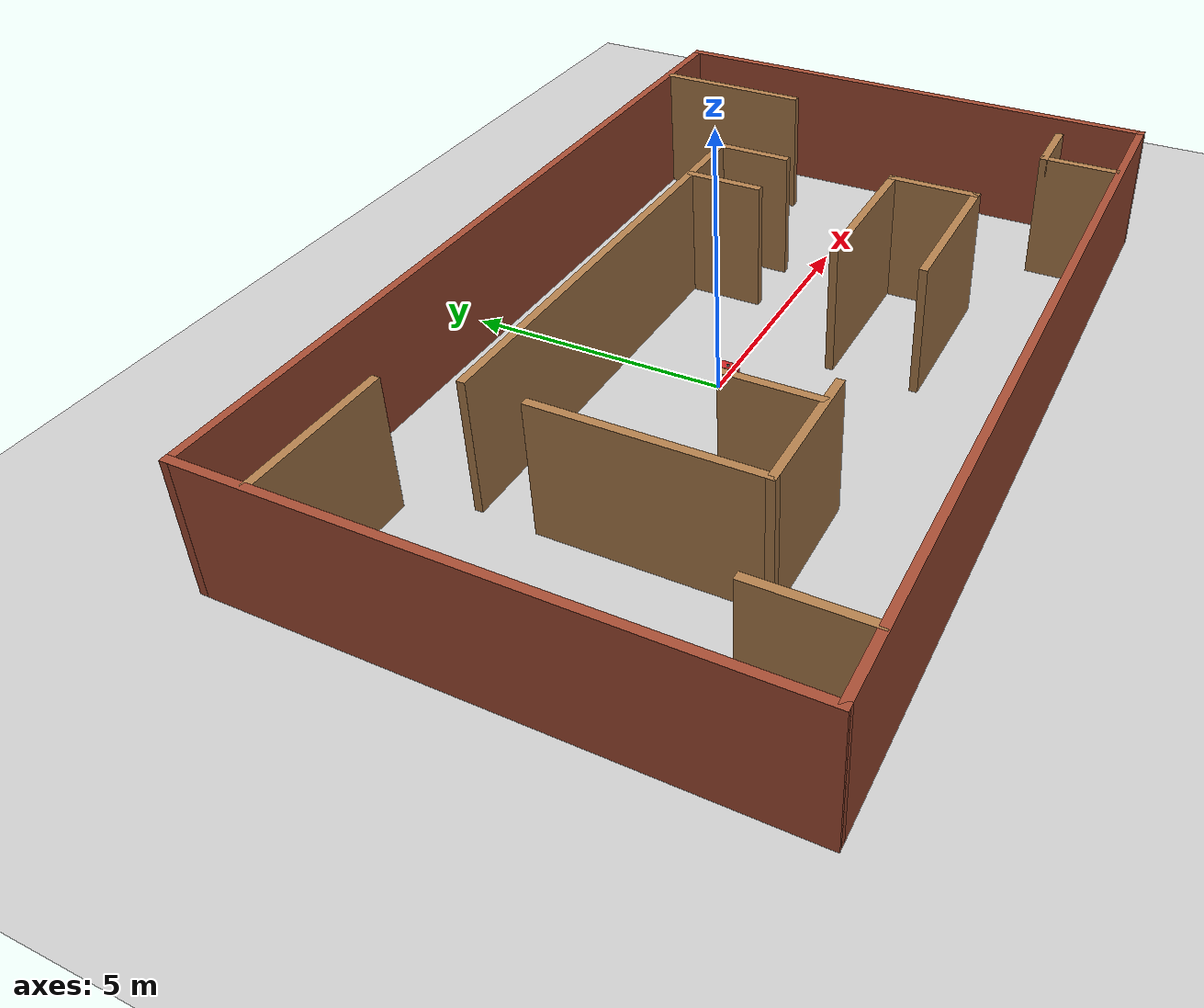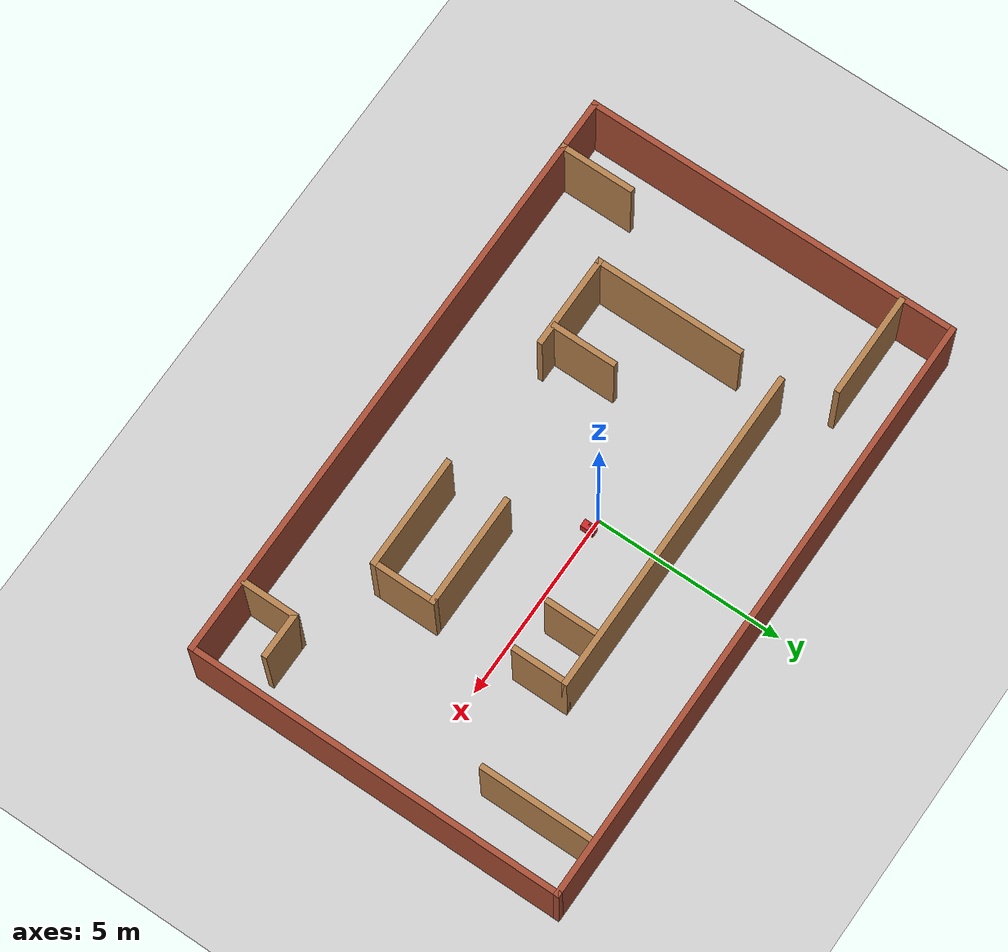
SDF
<sdf version="1.6">
 <world name="default">
  <light name="sun" type="directional">
   <pose>0 0 10 0 -0 0</pose>
   <diffuse>0.8 0.8 0.8 1</diffuse>
   <specular>0.1 0.1 0.1 1</specular>
   <attenuation>
    <range>1000</range>
    <constant>0.9</constant>
    <linear>0.01</linear>
    <quadratic>0.001</quadratic>
   </attenuation>
   <direction>-0.5 0.5 -1</direction>
  </light>
  <model name="ground_plane">
   <static>1</static>
   <link name="link">
    <collision name="collision">
     <geometry><plane><normal>0 0 1</normal><size>100 100</size></plane></geometry>
     <surface><friction><ode><mu>100</mu><mu2>50</mu2></ode></friction></surface>
    </collision>
    <visual name="visual">
     <cast_shadows>0</cast_shadows>
     <geometry><plane><normal>0 0 1</normal><size>100 100</size></plane></geometry>
     <material>
      <script><uri>file://media/materials/scripts/gazebo.material</uri><name>Gazebo/Grey</name></script>
     </material>
    </visual>
   </link>
  </model>
  <gravity>0 0 -9.8</gravity>
  <magnetic_field>6e-06 2.3e-05 -4.2e-05</magnetic_field>
  <atmosphere type="adiabatic"/>
  <physics name="default_physics" default="0" type="ode">
   <max_step_size>0.001</max_step_size>
   <real_time_factor>1</real_time_factor>
   <real_time_update_rate>1000</real_time_update_rate>
  </physics>
  <scene><ambient>0.4 0.4 0.4 1</ambient><background>0.7 0.7 0.7 1</background><shadows>1</shadows></scene>
  <spherical_coordinates>
   <surface_model>EARTH_WGS84</surface_model>
   <latitude_deg>0</latitude_deg>
   <longitude_deg>0</longitude_deg>
   <elevation>0</elevation>
   <heading_deg>0</heading_deg>
  </spherical_coordinates>
  <model name="sim_world">
   <pose>0.267794 -0.41395 0 0 -0 0</pose>
   <link name="Wall_10">
    <collision name="Wall_10_Collision">
     <geometry><box><size>8.75 0.15 2.5</size></box></geometry>
     <pose>0 0 1.25 0 -0 0</pose>
    </collision>
    <visual name="Wall_10_Visual">
     <pose>0 0 1.25 0 -0 0</pose>
     <geometry><box><size>8.75 0.15 2.5</size></box></geometry>
     <material>
      <script><uri>file://media/materials/scripts/gazebo.material</uri><name>Gazebo/Wood</name></script>
      <ambient>1 1 1 1</ambient>
     </material>
    </visual>
    <pose>-0.406828 2.37058 0 0 -0 0</pose>
   </link>
   <link name="Wall_11">
    <collision name="Wall_11_Collision">
     <geometry><box><size>1.5 0.15 2.5</size></box></geometry>
     <pose>0 0 1.25 0 -0 0</pose>
    </collision>
    <visual name="Wall_11_Visual">
     <pose>0 0 1.25 0 -0 0</pose>
     <geometry><box><size>1.5 0.15 2.5</size></box></geometry>
     <material>
      <script><uri>file://media/materials/scripts/gazebo.material</uri><name>Gazebo/Wood</name></script>
      <ambient>1 1 1 1</ambient>
     </material>
    </visual>
    <pose>3.89317 1.69558 0 0 0 -1.5708</pose>
   </link>
   <link name="Wall_13">
    <collision name="Wall_13_Collision">
     <geometry><box><size>1.75 0.15 2.5</size></box></geometry>
     <pose>0 0 1.25 0 -0 0</pose>
    </collision>
    <visual name="Wall_13_Visual">
     <pose>0 0 1.25 0 -0 0</pose>
     <geometry><box><size>1.75 0.15 2.5</size></box></geometry>
     <material>
      <script><uri>file://media/materials/scripts/gazebo.material</uri><name>Gazebo/Wood</name></script>
      <ambient>1 1 1 1</ambient>
     </material>
    </visual>
    <pose>4.02246 -1.92918 0 0 0 -1.5708</pose>
   </link>
   <link name="Wall_14">
    <collision name="Wall_14_Collision">
     <geometry><box><size>3 0.15 2.5</size></box></geometry>
     <pose>0 0 1.25 0 -0 0</pose>
    </collision>
    <visual name="Wall_14_Visual">
     <pose>0 0 1.25 0 -0 0</pose>
     <geometry><box><size>3 0.15 2.5</size></box></geometry>
     <material>
      <script><uri>file://media/materials/scripts/gazebo.material</uri><name>Gazebo/Wood</name></script>
      <ambient>1 1 1 1</ambient>
     </material>
    </visual>
    <pose>2.59746 -2.72919 0 0 -0 3.14159</pose>
   </link>
   <link name="Wall_16">
    <collision name="Wall_16_Collision">
     <geometry><box><size>2.5 0.15 2.5</size></box></geometry>
     <pose>0 0 1.25 0 -0 0</pose>
    </collision>
    <visual name="Wall_16_Visual">
     <pose>0 0 1.25 0 -0 0</pose>
     <geometry><box><size>2.5 0.15 2.5</size></box></geometry>
     <material>
      <script><uri>file://media/materials/scripts/gazebo.material</uri><name>Gazebo/Wood</name></script>
      <ambient>1 1 1 1</ambient>
     </material>
    </visual>
    <pose>-3.58888 -2.6377 0 0 -0 3.14159</pose>
   </link>
   <link name="Wall_17">
    <collision name="Wall_17_Collision">
     <geometry><box><size>4 0.15 2.5</size></box></geometry>
     <pose>0 0 1.25 0 -0 0</pose>
    </collision>
    <visual name="Wall_17_Visual">
     <pose>0 0 1.25 0 -0 0</pose>
     <geometry><box><size>4 0.15 2.5</size></box></geometry>
     <material>
      <script><uri>file://media/materials/scripts/gazebo.material</uri><name>Gazebo/Wood</name></script>
      <ambient>1 1 1 1</ambient>
     </material>
    </visual>
    <pose>-4.76388 -0.712703 0 0 -0 1.5708</pose>
   </link>
   <link name="Wall_19">
    <collision name="Wall_19_Collision">
     <geometry><box><size>1.75 0.15 2.5</size></box></geometry>
     <pose>0 0 1.25 0 -0 0</pose>
    </collision>
    <visual name="Wall_19_Visual">
     <pose>0 0 1.25 0 -0 0</pose>
     <geometry><box><size>1.75 0.15 2.5</size></box></geometry>
     <material>
      <script><uri>file://media/materials/scripts/gazebo.material</uri><name>Gazebo/Wood</name></script>
      <ambient>1 1 1 1</ambient>
     </material>
    </visual>
    <pose>-2.89661 -1.78839 0 0 0 -1.5708</pose>
   </link>
   <link name="Wall_21">
    <collision name="Wall_21_Collision">
     <geometry><box><size>2 0.15 2.5</size></box></geometry>
     <pose>0 0 1.25 0 -0 0</pose>
    </collision>
    <visual name="Wall_21_Visual">
     <pose>0 0 1.25 0 -0 0</pose>
     <geometry><box><size>2 0.15 2.5</size></box></geometry>
     <material>
      <script><uri>file://media/materials/scripts/gazebo.material</uri><name>Gazebo/Wood</name></script>
      <ambient>1 1 1 1</ambient>
     </material>
    </visual>
    <pose>-6.63773 -3.98509 0 0 0 -1.5708</pose>
   </link>
   <link name="Wall_23">
    <collision name="Wall_23_Collision">
     <geometry><box><size>2.75 0.15 2.5</size></box></geometry>
     <pose>0 0 1.25 0 -0 0</pose>
    </collision>
    <visual name="Wall_23_Visual">
     <pose>0 0 1.25 0 -0 0</pose>
     <geometry><box><size>2.75 0.15 2.5</size></box></geometry>
     <material>
      <script><uri>file://media/materials/scripts/gazebo.material</uri><name>Gazebo/Wood</name></script>
      <ambient>1 1 1 1</ambient>
     </material>
    </visual>
    <pose>-6.56466 3.57739 0 0 -0 0</pose>
   </link>
   <link name="Wall_25">
    <collision name="Wall_25_Collision">
     <geometry><box><size>1.5 0.15 2.5</size></box></geometry>
     <pose>0 0 1.25 0 -0 0</pose>
    </collision>
    <visual name="Wall_25_Visual">
     <pose>0 0 1.25 0 -0 0</pose>
     <geometry><box><size>1.5 0.15 2.5</size></box></geometry>
     <material>
      <script><uri>file://media/materials/scripts/gazebo.material</uri><name>Gazebo/Wood</name></script>
      <ambient>1 1 1 1</ambient>
     </material>
    </visual>
    <pose>2.57429 1.67546 0 0 0 -1.5708</pose>
   </link>
   <link name="Wall_27">
    <collision name="Wall_27_Collision">
     <geometry><box><size>3 0.15 2.5</size></box></geometry>
     <pose>0 0 1.25 0 -0 0</pose>
    </collision>
    <visual name="Wall_27_Visual">
     <pose>0 0 1.25 0 -0 0</pose>
     <geometry><box><size>3 0.15 2.5</size></box></geometry>
     <material>
      <script><uri>file://media/materials/scripts/gazebo.material</uri><name>Gazebo/Wood</name></script>
      <ambient>1 1 1 1</ambient>
     </material>
    </visual>
    <pose>6.51654 3.39943 0 0 0 -1.5708</pose>
   </link>
   <link name="Wall_29">
    <collision name="Wall_29_Collision">
     <geometry><box><size>1.5 0.15 2.5</size></box></geometry>
     <pose>0 0 1.25 0 -0 0</pose>
    </collision>
    <visual name="Wall_29_Visual">
     <pose>0 0 1.25 0 -0 0</pose>
     <geometry><box><size>1.5 0.15 2.5</size></box></geometry>
     <material>
      <script><uri>file://media/materials/scripts/gazebo.material</uri><name>Gazebo/Wood</name></script>
      <ambient>1 1 1 1</ambient>
     </material>
    </visual>
    <pose>6.03382 -4.15508 0 0 -0 1.5708</pose>
   </link>
   <link name="Wall_30">
    <collision name="Wall_30_Collision">
     <geometry><box><size>1.25 0.15 2.5</size></box></geometry>
     <pose>0 0 1.25 0 -0 0</pose>
    </collision>
    <visual name="Wall_30_Visual">
     <pose>0 0 1.25 0 -0 0</pose>
     <geometry><box><size>1.25 0.15 2.5</size></box></geometry>
     <material>
      <script><uri>file://media/materials/scripts/gazebo.material</uri><name>Gazebo/Wood</name></script>
      <ambient>1 1 1 1</ambient>
     </material>
    </visual>
    <pose>6.58382 -3.48008 0 0 -0 0</pose>
   </link>
   <link name="Wall_32">
    <collision name="Wall_32_Collision">
     <geometry><box><size>3 0.15 2.5</size></box></geometry>
     <pose>0 0 1.25 0 -0 0</pose>
    </collision>
    <visual name="Wall_32_Visual">
     <pose>0 0 1.25 0 -0 0</pose>
     <geometry><box><size>3 0.15 2.5</size></box></geometry>
     <material>
      <script><uri>file://media/materials/scripts/gazebo.material</uri><name>Gazebo/Wood</name></script>
      <ambient>1 1 1 1</ambient>
     </material>
    </visual>
    <pose>2.59746 -1.12919 0 0 -0 3.14159</pose>
   </link>
   <link name="Wall_4">
    <collision name="Wall_4_Collision">
     <geometry><box><size>10 0.15 2.5</size></box></geometry>
     <pose>0 0 1.25 0 -0 0</pose>
    </collision>
    <visual name="Wall_4_Visual">
     <pose>0 0 1.25 0 -0 0</pose>
     <geometry><box><size>10 0.15 2.5</size></box></geometry>
     <material>
      <script><uri>file://media/materials/scripts/gazebo.material</uri><name>Gazebo/Bricks</name></script>
      <ambient>1 1 1 1</ambient>
     </material>
    </visual>
    <pose>-7.925 0 0 0 0 -1.5708</pose>
   </link>
   <link name="Wall_5">
    <collision name="Wall_5_Collision">
     <geometry><box><size>16 0.15 2.5</size></box></geometry>
     <pose>0 0 1.25 0 -0 0</pose>
    </collision>
    <visual name="Wall_5_Visual">
     <pose>0 0 1.25 0 -0 0</pose>
     <geometry><box><size>16 0.15 2.5</size></box></geometry>
     <material>
      <script><uri>file://media/materials/scripts/gazebo.material</uri><name>Gazebo/Bricks</name></script>
      <ambient>1 1 1 1</ambient>
     </material>
    </visual>
    <pose>0 -4.925 0 0 -0 0</pose>
   </link>
   <link name="Wall_6">
    <collision name="Wall_6_Collision">
     <geometry><box><size>10 0.15 2.5</size></box></geometry>
     <pose>0 0 1.25 0 -0 0</pose>
    </collision>
    <visual name="Wall_6_Visual">
     <pose>0 0 1.25 0 -0 0</pose>
     <geometry><box><size>10 0.15 2.5</size></box></geometry>
     <material>
      <script><uri>file://media/materials/scripts/gazebo.material</uri><name>Gazebo/Bricks</name></script>
      <ambient>1 1 1 1</ambient>
     </material>
    </visual>
    <pose>7.925 0 0 0 -0 1.5708</pose>
   </link>
   <link name="Wall_7">
    <collision name="Wall_7_Collision">
     <geometry><box><size>16 0.15 2.5</size></box></geometry>
     <pose>0 0 1.25 0 -0 0</pose>
    </collision>
    <visual name="Wall_7_Visual">
     <pose>0 0 1.25 0 -0 0</pose>
     <geometry><box><size>16 0.15 2.5</size></box></geometry>
     <material>
      <script><uri>file://media/materials/scripts/gazebo.material</uri><name>Gazebo/Bricks</name></script>
      <ambient>1 1 1 1</ambient>
     </material>
    </visual>
    <pose>0 4.925 0 0 -0 3.14159</pose>
   </link>
   <static>1</static>
  </model>
  <audio><device>default</device></audio>
  <model name="box_table">
   <static>0</static>
   <link name="link">
    <inertial>
     <mass>5</mass>
     <inertia><ixx>0.07</ixx><ixy>0</ixy><iyy>0.07</iyy><ixz>0</ixz><iyz>0</iyz><izz>0.07</izz></inertia>
    </inertial>
    <collision name="collision">
     <geometry><box><size>0.35 0.2 0.3</size></box></geometry>
     <surface>
      <contact><ode><max_vel>0.1</max_vel><min_depth>0.001</min_depth></ode></contact>
      <friction><ode><mu>100</mu><mu2>50</mu2></ode></friction>
     </surface>
    </collision>
    <visual name="visual">
     <geometry><box><size>0.35 0.2 0.3</size></box></geometry>
     <material>
      <script><uri>file://media/materials/scripts/gazebo.material</uri><name>Gazebo/Red</name></script>
     </material>
    </visual>
   </link>
   <pose>0.316069 -0.04222 0.149468 -5.2e-05 0.000199 -1.57628</pose>
  </model>
  <model name="box_black">
   <static>0</static>
   <link name="link">
    <inertial>
     <mass>5</mass>
     <inertia><ixx>0.07</ixx><ixy>0</ixy><iyy>0.07</iyy><ixz>0</ixz><iyz>0</iyz><izz>0.07</izz></inertia>
    </inertial>
    <collision name="collision">
     <geometry><box><size>0.04 0.04 0.04</size></box></geometry>
     <surface>
      <contact><ode><max_vel>0.1</max_vel><min_depth>0.001</min_depth></ode></contact>
      <friction><ode><mu>100</mu><mu2>50</mu2></ode></friction>
     </surface>
    </collision>
    <visual name="visual">
     <geometry><box><size>0.04 0.04 0.04</size></box></geometry>
     <material>
      <script><uri>file://media/materials/scripts/gazebo.material</uri><name>Gazebo/Black</name></script>
     </material>
    </visual>
   </link>
   <pose>0.28092 -0.05063 0.318547 7.1e-05 -0.002606 -0.000633</pose>
  </model>
 </world>
</sdf>
